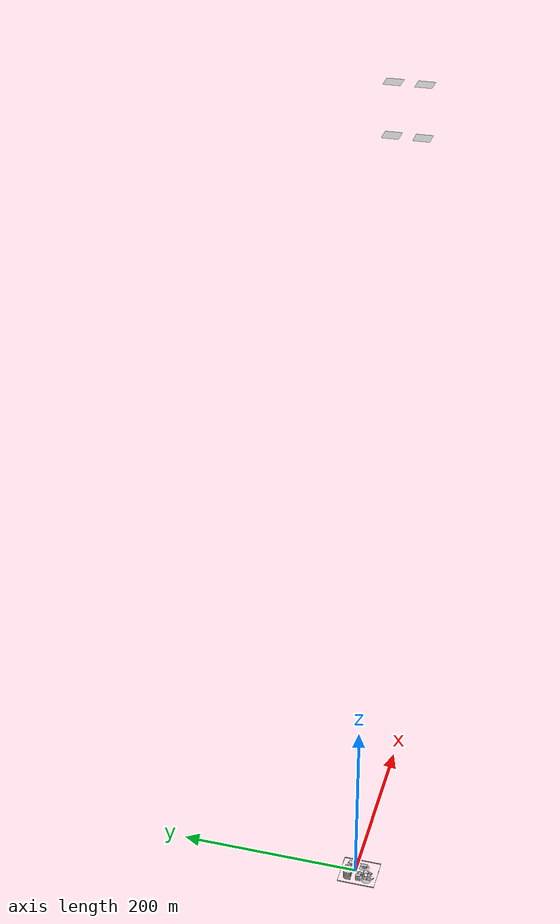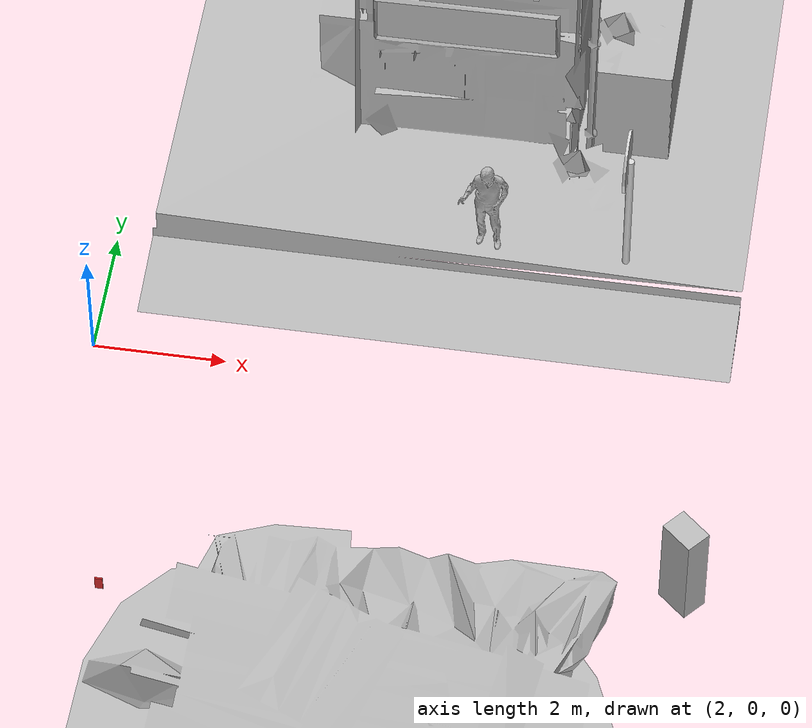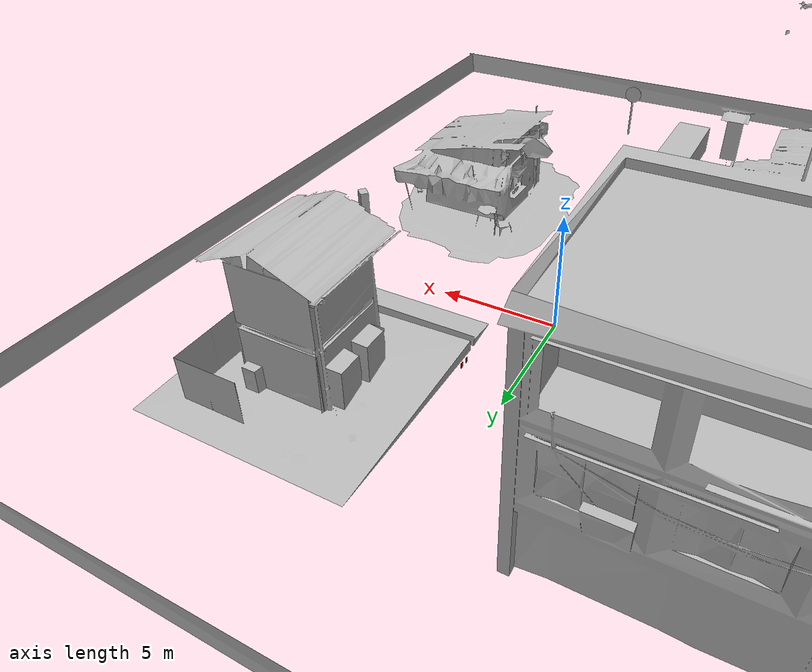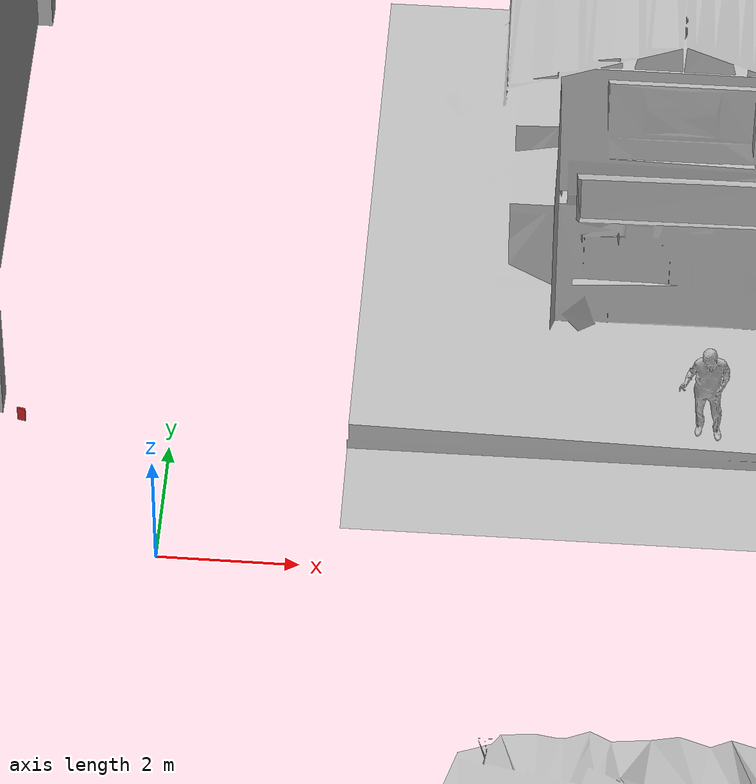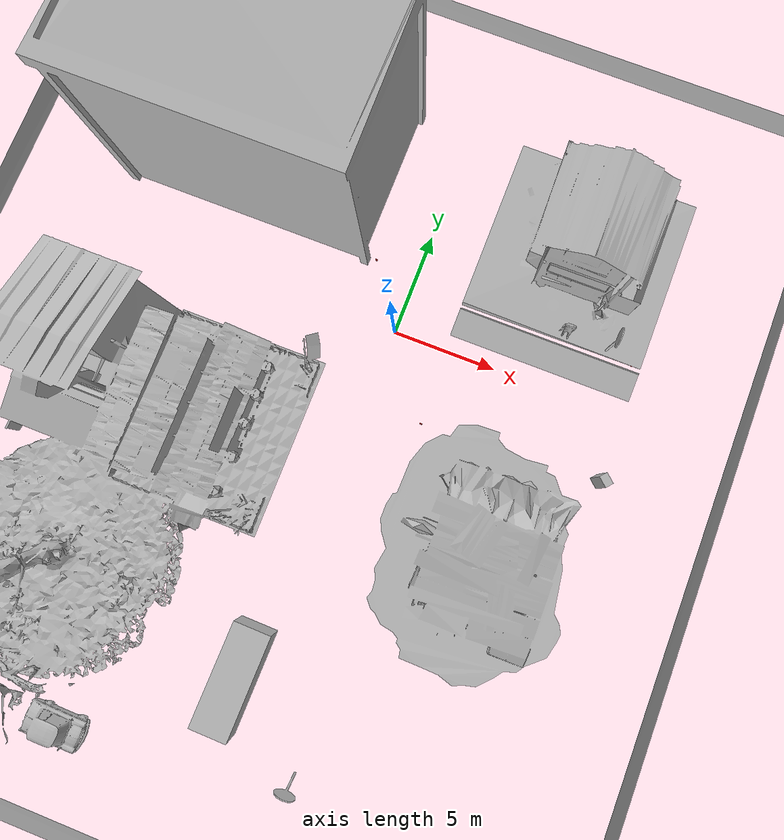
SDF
<?xml version="1.0" ?>
<sdf version="1.4">
  <world name="default">
    <gui fullscreen='0'>
      <camera name='user_camera'>
        <pose frame=''>-0.23904 -19.0487 0.901345 -0 0.071456 1.52819</pose>
        <view_controller>orbit</view_controller>
        <projection_type>perspective</projection_type>
      </camera>
    </gui>

    <physics type="ode">
      <gravity>0 0 -9.81</gravity>
      <ode>
        <solver>
          <type>world</type>
          <iters>500</iters>
          <sor>1.0</sor>
        </solver>
        <constraints>
          <cfm>0.0</cfm>
          <erp>0.2</erp>
          <contact_max_correcting_vel>0.1</contact_max_correcting_vel>
          <contact_surface_layer>0.0</contact_surface_layer>
        </constraints>
      </ode>
      <real_time_update_rate>1000</real_time_update_rate>
      <max_step_size>0.001</max_step_size>
    </physics>

    <!-- A global light source -->
    <include>
      <uri>model://sun</uri>
    </include>
    <model name='ground_plane'>
      <static>1</static>
      <link name='link'>
        <collision name='collision'>
          <geometry>
            <plane>
              <normal>0 0 1</normal>
              <size>100 100</size>
            </plane>
          </geometry>
          <surface>
            <friction>
              <ode>
                <mu>100</mu>
                <mu2>50</mu2>
              </ode>
              <torsional>
                <ode/>
              </torsional>
            </friction>
            <contact>
              <ode/>
            </contact>
            <bounce/>
          </surface>
          <max_contacts>10</max_contacts>
        </collision>
        <self_collide>0</self_collide>
        <enable_wind>0</enable_wind>
        <kinematic>0</kinematic>
      </link>
    </model>

    <include>
      <uri>model://town1</uri>
      <pose>0 0 -0.189298 0 0 0</pose>
    </include>

    <include>
      <uri>model://traffic_light</uri>
      <name>traffic_light1</name>
      <pose>2.725098 2.800253 -1.0 0 0 1.578703</pose>
    </include>

    <include>
      <uri>model://traffic_light</uri>
      <name>traffic_light2</name>
      <pose>2.687547 -3.509005 -1.0 0 0 0</pose>
    </include>

    <include>
      <uri>model://traffic_light</uri>
      <name>traffic_light3</name>
      <pose>2.703650 2.435987 -1.0 0 0 -1.545811</pose>
    </include>

    <include>
      <uri>model://traffic_light</uri>
      <name>traffic_light4</name>
      <pose>-2.291075 3.330095 -1.0 0 0 2.941129</pose>
    </include>

    <include>
      <uri>model://traffic_light</uri>
      <name>traffic_light5</name>
      <pose>11.196165 2.800253 -1.0 0 0 0</pose>
    </include>

    <include>
      <uri>model://speed_limit_80</uri>
      <name>speed_limit_80_1</name>
      <pose>9.634830 2.800253 -0.154945 0 0 0</pose>
    </include>

    <include>
      <uri>model://speed_limit_80</uri>
      <name>speed_limit_80_2</name>
      <pose>3.093306 -19.901224 -0.154945 0 0 -1.580482</pose>
    </include>

     <include>
      <uri>model://car_passat</uri>
      <name>car_passat1</name>
      <pose>-1.003638 -17.657362 0.320109 0 0 3.125236</pose>
    </include>

  <include>
      <uri>model://old_car</uri>
      <name>old_car1</name>
      <pose>-7.381139 -21.600540 -0.011254 0 0 3.125236</pose>
    </include>

    <include>
      <uri>model://person_ken</uri>
      <name>person_ken</name>
      <pose>7.524980 2.741197 0.148014 0 0 0</pose>
    </include>

    <include>
      <uri>model://person_ryan</uri>
      <name>person_ryan</name>
      <pose>11.196165 -3.220906 0.046237 0 0 2.421118</pose>
    </include>

    <!-- PLUGINS -->
    <plugin name="traffic_light_manager_world_plugin" filename="libtraffic_light_manager_world_plugin.so">
      <update_frequency>1.0</update_frequency>
      <model_traffic_lights>traffic_light1</model_traffic_lights>
    </plugin>

    <!-- LIGHTS -->

    <light name='user_point_light_0' type='point'>
      <pose frame=''>7.1 0.0 3.0 0 0 0</pose>
      <diffuse>0.2 0.2 0.2 1</diffuse>
      <specular>0.1 0.1 0.1 1</specular>
      <attenuation>
        <range>10</range>
        <constant>0.5</constant>
        <linear>0.01</linear>
        <quadratic>0.001</quadratic>
      </attenuation>
      <cast_shadows>0</cast_shadows>
      <direction>0 0 -1</direction>
    </light>

    <light name='user_point_light_1' type='point'>
      <pose frame=''>-7.1 0.0 3.0 0 0 0</pose>
      <diffuse>0.2 0.2 0.2 1</diffuse>
      <specular>0.1 0.1 0.1 1</specular>
      <attenuation>
        <range>10</range>
        <constant>0.5</constant>
        <linear>0.01</linear>
        <quadratic>0.001</quadratic>
      </attenuation>
      <cast_shadows>0</cast_shadows>
      <direction>0 0 -1</direction>
    </light>

    <light name='user_point_light_2' type='point'>
      <pose frame=''>7.1 -16.0 3.0 0 0 0</pose>
      <diffuse>0.2 0.2 0.2 1</diffuse>
      <specular>0.1 0.1 0.1 1</specular>
      <attenuation>
        <range>10</range>
        <constant>0.5</constant>
        <linear>0.01</linear>
        <quadratic>0.001</quadratic>
      </attenuation>
      <cast_shadows>0</cast_shadows>
      <direction>0 0 -1</direction>
    </light>

    <light name='user_point_light_3' type='point'>
      <pose frame=''>-7.1 -16.0 3.0 0 0 0</pose>
      <diffuse>0.2 0.2 0.2 1</diffuse>
      <specular>0.1 0.1 0.1 1</specular>
      <attenuation>
        <range>10.0</range>
        <constant>0.5</constant>
        <linear>0.01</linear>
        <quadratic>0.001</quadratic>
      </attenuation>
      <cast_shadows>0</cast_shadows>
      <direction>0 0 -1</direction>
    </light>

    <light name='user_point_light_4' type='point'>
      <pose frame=''>7.1 13.0 3.0 0 0 0</pose>
      <diffuse>0.2 0.2 0.2 1</diffuse>
      <specular>0.1 0.1 0.1 1</specular>
      <attenuation>
        <range>10.0</range>
        <constant>0.5</constant>
        <linear>0.01</linear>
        <quadratic>0.001</quadratic>
      </attenuation>
      <cast_shadows>0</cast_shadows>
      <direction>0 0 -1</direction>
    </light>

    <light name='user_point_light_5' type='point'>
      <pose frame=''>-7.1 13.0 3.0 0 0 0</pose>
      <diffuse>0.2 0.2 0.2 1</diffuse>
      <specular>0.1 0.1 0.1 1</specular>
      <attenuation>
        <range>10</range>
        <constant>0.5</constant>
        <linear>0.01</linear>
        <quadratic>0.001</quadratic>
      </attenuation>
      <cast_shadows>0</cast_shadows>
      <direction>0 0 -1</direction>
    </light>

  </world>
</sdf>

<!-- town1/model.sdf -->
<sdf version='1.6'>
  <model name='town1'>
    <link name='link_1'>
         <visual name='visual'>
        <pose frame=''>0 0 0 0 -0 0</pose>
        <geometry>
          <mesh>
            <uri>model://town1/meshes/town1.dae</uri>
            <scale>1.0 1.0 1.0</scale>
          </mesh>
        </geometry>
        <cast_shadows>0</cast_shadows>
        <transparency>0</transparency>
      </visual>
      <collision name='collision'>
        <laser_retro>0</laser_retro>
        <max_contacts>10</max_contacts>
        <pose frame=''>0 0 0 0 -0 0</pose>
        <geometry>
          <mesh>
            <uri>model://town1/meshes/town1_nofloor.stl</uri>
            <scale>1.0 1.0 1.0</scale>
          </mesh>
        </geometry>
     </collision>
    </link>

    <static>1</static>
    <allow_auto_disable>1</allow_auto_disable>
  </model>
</sdf>

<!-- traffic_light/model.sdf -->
<sdf version='1.6'>
  <model name='traffic_light'>
    <link name='traffic_light'>
      <pose>0 0 0 0 0 0</pose>
      <collision name='collision'>
        <geometry>
          <box>
            <size>0.12 0.025 0.25</size>
          </box>
        </geometry>
      </collision>
      <visual name='visual'>
        <geometry>
          <box>
            <size>0.12 0.025 0.25</size>
          </box>
        </geometry>
        <material>
          <script>
            <uri>model://turtlebot3_autorace_2020/traffic_light/materials/scripts</uri>
            <uri>model://turtlebot3_autorace_2020/traffic_light/materials/textures</uri>
            <name>traffic_light_red</name>
          </script>
        </material>
      </visual>
    </link>
    <plugin name="traffic_light_plugin" filename="libtraffic_light_plugin.so">
    </plugin>
    <static>1</static>
  </model>
</sdf>

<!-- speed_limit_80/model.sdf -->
<sdf version='1.6'>
  <model name='speed_limit_80'>
    <link name='link_1'>
         <visual name='visual'>
        <pose frame=''>0 0 0 0 -0 0</pose>
        <geometry>
          <mesh>
            <uri>model://speed_limit_80/meshes/speed_limit_80.dae</uri>
            <scale>2.0 2.0 2.0</scale>
          </mesh>
        </geometry>
        <cast_shadows>0</cast_shadows>
        <transparency>0</transparency>
      </visual>
      <collision name='collision'>
        <laser_retro>0</laser_retro>
        <max_contacts>10</max_contacts>
        <pose frame=''>0 0 0 0 -0 0</pose>
        <geometry>
          <mesh>
            <uri>model://speed_limit_80/meshes/speed_limit_80.dae</uri>
            <scale>2.0 2.0 2.0</scale>
          </mesh>
        </geometry>
     </collision>
    </link>

    <static>1</static>
    <allow_auto_disable>1</allow_auto_disable>
  </model>

</sdf>

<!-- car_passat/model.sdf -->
<sdf version='1.6'>
  <model name='car_passat'>
    <link name='link_1'>
      <visual name='visual'>
        <pose frame=''>0 0 0 0 -0 0</pose>
        <geometry>
          <mesh>
            <uri>model://car_passat/meshes/car_passat.dae</uri>
            <scale>1.0 1.0 1.0</scale>
          </mesh>
        </geometry>
        <cast_shadows>0</cast_shadows>
        <transparency>0</transparency>
      </visual>
      <collision name='collision'>
        <laser_retro>0</laser_retro>
        <max_contacts>10</max_contacts>
        <pose frame=''>0 0 0 0 -0 0</pose>
        <geometry>
          <mesh>
            <uri>model://car_passat/meshes/car_passat.stl</uri>
            <scale>1.0 1.0 1.0</scale>
          </mesh>
        </geometry>
     </collision>
    </link>

    <static>1</static>
    <allow_auto_disable>1</allow_auto_disable>
  </model>
</sdf>

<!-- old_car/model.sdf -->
<sdf version='1.6'>
  <model name='old_car'>
    <link name='link_1'>
      <visual name='visual'>
        <pose frame=''>0 0 0 0 -0 0</pose>
        <geometry>
          <mesh>
            <uri>model://old_car/meshes/old_car.dae</uri>
            <scale>1.0 1.0 1.0</scale>
          </mesh>
        </geometry>
        <cast_shadows>0</cast_shadows>
        <transparency>0</transparency>
      </visual>
      <collision name='collision'>
        <laser_retro>0</laser_retro>
        <max_contacts>10</max_contacts>
        <pose frame=''>0 0 0 0 -0 0</pose>
        <geometry>
          <mesh>
            <uri>model://old_car/meshes/old_car.stl</uri>
            <scale>1.0 1.0 1.0</scale>
          </mesh>
        </geometry>
     </collision>
    </link>

    <static>1</static>
    <allow_auto_disable>1</allow_auto_disable>
  </model>
</sdf>

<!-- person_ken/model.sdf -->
<sdf version='1.6'>
  <model name='person_ken'>
    <link name='link_1'>

    <inertial>
        <mass>1.0</mass>
        <inertia> <!-- inertias are tricky to compute -->
          <!-- http://gazebosim.org/tutorials?tut=inertia&cat=build_robot -->
          <ixx>0.001666666666666667</ixx>       <!-- for a box: ixx = 0.083 * mass * (y*y + z*z) -->
          <ixy>0.0</ixy>         <!-- for a box: ixy = 0 -->
          <ixz>0.0</ixz>         <!-- for a box: ixz = 0 -->
          <iyy>0.001666666666666667</iyy>       <!-- for a box: iyy = 0.083 * mass * (x*x + z*z) -->
          <iyz>0.0</iyz>         <!-- for a box: iyz = 0 -->
          <izz>0.001666666666666667</izz>       <!-- for a box: izz = 0.083 * mass * (x*x + y*y) -->
        </inertia>
      </inertial>
         <visual name='visual'>
        <pose frame=''>0 0 0 0 -0 0</pose>
        <geometry>
          <mesh>
            <uri>model://person_ken/meshes/person_ken.dae</uri>
            <scale>1.0 1.0 1.0</scale>
          </mesh>
        </geometry>
        <cast_shadows>0</cast_shadows>
        <transparency>0</transparency>
      </visual>
      <collision name='collision'>
        <laser_retro>0</laser_retro>
        <max_contacts>10</max_contacts>
        <pose frame=''>0 0 0 0 -0 0</pose>
        <geometry>
          <mesh>
            <uri>model://person_ken/meshes/person_ken.stl</uri>
            <scale>1.0 1.0 1.0</scale>
          </mesh>
        </geometry>
     </collision>
    </link>

    <static>1</static>
    <allow_auto_disable>1</allow_auto_disable>
  </model>
</sdf>

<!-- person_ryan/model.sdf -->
<sdf version='1.6'>
  <model name='person_ryan'>
    <link name='link_1'>

    <inertial>
        <mass>1.0</mass>
        <inertia> <!-- inertias are tricky to compute -->
          <!-- http://gazebosim.org/tutorials?tut=inertia&cat=build_robot -->
          <ixx>0.001666666666666667</ixx>       <!-- for a box: ixx = 0.083 * mass * (y*y + z*z) -->
          <ixy>0.0</ixy>         <!-- for a box: ixy = 0 -->
          <ixz>0.0</ixz>         <!-- for a box: ixz = 0 -->
          <iyy>0.001666666666666667</iyy>       <!-- for a box: iyy = 0.083 * mass * (x*x + z*z) -->
          <iyz>0.0</iyz>         <!-- for a box: iyz = 0 -->
          <izz>0.001666666666666667</izz>       <!-- for a box: izz = 0.083 * mass * (x*x + y*y) -->
        </inertia>
      </inertial>
         <visual name='visual'>
        <pose frame=''>0 0 0 0 -0 0</pose>
        <geometry>
          <mesh>
            <uri>model://person_ryan/meshes/person_ryan.dae</uri>
            <scale>1.0 1.0 1.0</scale>
          </mesh>
        </geometry>
        <cast_shadows>0</cast_shadows>
        <transparency>0</transparency>
      </visual>
      <collision name='collision'>
        <laser_retro>0</laser_retro>
        <max_contacts>10</max_contacts>
        <pose frame=''>0 0 0 0 -0 0</pose>
        <geometry>
          <mesh>
            <uri>model://person_ryan/meshes/person_ryan.stl</uri>
            <scale>1.0 1.0 1.0</scale>
          </mesh>
        </geometry>
     </collision>
    </link>

    <static>1</static>
    <allow_auto_disable>1</allow_auto_disable>
  </model>
</sdf>
